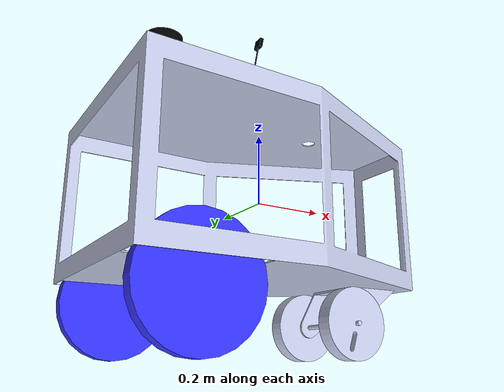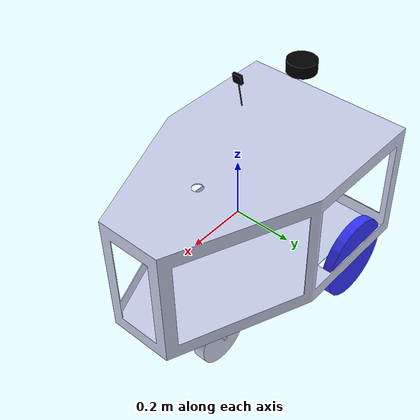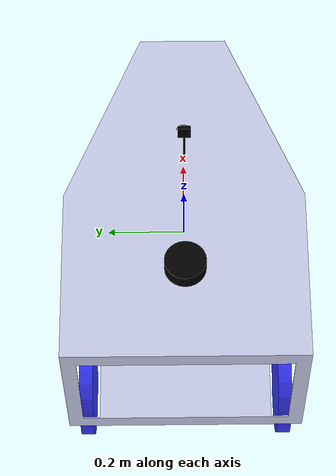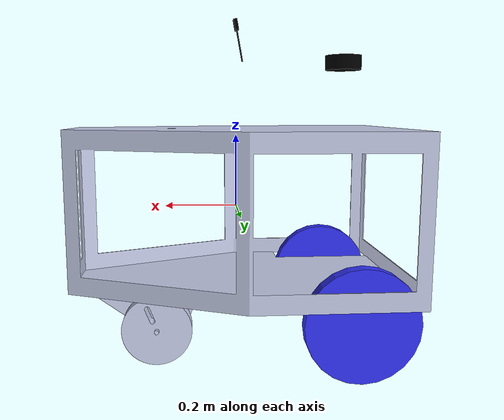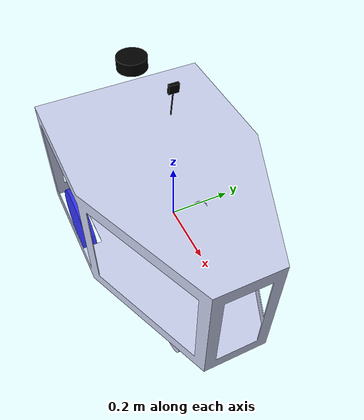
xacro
<?xml version="1.0"?>
<robot xmlns:xacro="http://www.ros.org/wiki/xacro"  name="robot">

    <xacro:arg name="use_ros2_control" default="true"/>
    <xacro:arg name="sim_mode" default="false"/>

    <xacro:include filename="dokalman_core.xacro" />

    <xacro:if value="$(arg use_ros2_control)">
        <xacro:include filename="ros2_control.xacro" />
    </xacro:if>
    <xacro:unless value="$(arg use_ros2_control)">
        <xacro:include filename="gazebo_control.xacro" />
    </xacro:unless>
    <xacro:include filename="lidar.xacro" />
    <xacro:include filename="camera.xacro" />

</robot>

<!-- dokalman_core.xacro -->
<robot xmlns:xacro="http://www.ros.org/wiki/xacro">

  <xacro:include filename="inertial_macros.xacro"/>

  <!-- PROPERTIES -->
  <xacro:property name="wheel_radius" value="0.15"/>
  <xacro:property name="wheel_thickness" value="0.035"/>
  <xacro:property name="wheel_mass" value="0.15"/>
  <xacro:property name="wheel_offset_x" value="-0.30175"/>
  <xacro:property name="wheel_offset_y" value="0.26"/>
  <xacro:property name="wheel_offset_z" value="-0.26683"/>

  <!-- MATERIALS -->
  <material name="white">
      <color rgba="1 1 1 1" />
  </material>

  <material name="orange">
      <color rgba="1 0.3 0.1 1"/>
  </material>

  <material name="blue">
      <color rgba="0.2 0.2 1 1"/>
  </material>

  <material name="black">
      <color rgba="0 0 0 1"/>
  </material>

  <material name="red">
      <color rgba="1 0 0 1"/>
  </material>

  <!-- BASE LINK -->
  <link name="base_link"/>

  <!-- BASE_FOOTPRINT LINK -->
  <joint name="base_footprint_joint" type="fixed">
      <parent link="base_link"/>
      <child link="base_footprint"/>
      <origin xyz="0 0 -0.40" rpy="0 0 0"/>
  </joint>

  <link name="base_footprint"/>

  <!-- CHASSIS -->
  <joint name="dokalman_chassis_joint" type="fixed">
    <parent link="base_link"/>
    <child link="ChassisLink"/>
    <origin xyz="0 0 0" rpy="0 0 0"/>
  </joint>
  <link name="ChassisLink">
    <xacro:inertial_box mass="1.5" x="1.2192" y="0.6858" z="0.8128">
        <origin xyz="0 0 0.042916" rpy="0 0 -1.5708"/>
    </xacro:inertial_box>
    <visual>
      <origin
        xyz="0 0 0"
        rpy="0 0 -1.5708" />

      <geometry>
        <mesh
          filename="file://$(find articubot_one)/meshes/base_link.STL" />
      </geometry>
      <material
        name="">
        <color
          rgba="0.79216 0.81961 0.93333 1" />
      </material>
    </visual>
    <collision>
      <origin
        xyz="0 0 0"
        rpy="0 0 -1.5708" />
      <geometry>
        <mesh
          filename="file://$(find articubot_one)/meshes/base_link.STL" />
      </geometry>
    </collision>
  </link>

  <!-- BACK LEFT WHEEL -->
  <joint name="left_wheel_joint" type="continuous">
      <parent link="base_link"/>
      <child link="left_wheel"/>
      <origin xyz="${wheel_offset_x} ${wheel_offset_y} ${wheel_offset_z}" rpy="-${pi/2} 0 0" />
      <axis xyz="0 0 1"/>
  </joint>

  <link name="left_wheel">
      <visual>
          <geometry>
              <cylinder radius="${wheel_radius}" length="${wheel_thickness}"/>
          </geometry>
          <material name="blue"/>
      </visual>
      <collision>
          <geometry>
              <sphere radius="${wheel_radius}"/>
          </geometry>
      </collision>
      <xacro:inertial_cylinder mass="${wheel_mass}" length="${wheel_thickness}" radius="${wheel_radius}">
          <origin xyz="0 0 0" rpy="0 0 0"/>
      </xacro:inertial_cylinder>
  </link>

  <gazebo reference="left_wheel">
      <material>Gazebo/White</material>
  </gazebo>

  <!-- BACK RIGHT WHEEL -->
  <joint name="right_wheel_joint" type="continuous">
        <parent link="base_link"/>
        <child link="right_wheel"/>
        <origin xyz="${wheel_offset_x}   ${-wheel_offset_y} ${wheel_offset_z}" rpy="${pi/2} 0 0" />
        <axis xyz="0 0 -1"/>
    </joint>

    <link name="right_wheel">
        <visual>
            <geometry>
                <cylinder radius="${wheel_radius}" length="${wheel_thickness}"/>
            </geometry>
            <material name="blue"/>
        </visual>
        <collision>
            <geometry>
                <sphere radius="${wheel_radius}"/>
            </geometry>
        </collision>
        <xacro:inertial_cylinder mass="${wheel_mass}" length="${wheel_thickness}" radius="${wheel_radius}">
            <origin xyz="0 0 0" rpy="0 0 0"/>
        </xacro:inertial_cylinder>
    </link>

    <gazebo reference="right_wheel">
        <material>Gazebo/White</material>
    </gazebo>

  <!-- CASTER -->
  <link name="CasterLink">
    <inertial>
      <origin
        xyz="0 -0.036462 0.035808"
        rpy="0 0 0" />
      <mass
        value="0.25" />
      <inertia
        ixx="0.0013774"
        ixy="0"
        ixz="0"
        iyy="0.0026235"
        iyz="0.0003954"
        izz="0.0020896" />
    </inertial>
    <visual>
      <origin
        xyz="0 0 0"
        rpy="0 0 0" />
      <geometry>
        <mesh
          filename="file://$(find articubot_one)/meshes/CasterLink.STL" />
      </geometry>
      <material
        name="">
        <color
          rgba="0.79216 0.81961 0.93333 1" />
      </material>
    </visual>
    <collision>
      <origin
        xyz="0 0 0"
        rpy="0 0 0" />
      <geometry>
        <mesh
          filename="file://$(find articubot_one)/meshes/CasterLink.STL" />
      </geometry>
    </collision>
  </link>
  <joint name="CasterJoint" type="continuous">
    <origin
      xyz="0.3302 0 -0.21908"
      rpy="1.5708 0 -1.5708" />
    <parent
      link="base_link" />
    <child
      link="CasterLink" />
    <axis
      xyz="0 1 0" />
    <limit
      lower="0"
      upper="3.1415"
      effort="1"
      velocity="1" />
  </joint>

  <!-- FRONT LEFT WHEEL -->
  <link name="FrontLeftWheelLink">
    <inertial>
      <origin
        xyz="-0.024699 0 0"
        rpy="0 0 0" />
      <mass
        value="0.1" />
      <inertia
        ixx="0.0053422"
        ixy="0"
        ixz="0"
        iyy="0.0028032"
        iyz="0"
        izz="0.0028787" />
    </inertial>
    <visual>
      <origin
        xyz="0 0 0"
        rpy="0 0 0" />
      <geometry>
        <mesh
          filename="file://$(find articubot_one)/meshes/FrontLeftWheelLink.STL" />
      </geometry>
      <material
        name="">
        <color
          rgba="0.79216 0.81961 0.93333 1" />
      </material>
    </visual>
    <collision>
      <origin
        xyz="0 0 0"
        rpy="0 0 0" />
      <geometry>
        <mesh
          filename="file://$(find articubot_one)/meshes/FrontLeftWheelLink.STL" />
      </geometry>
    </collision>
  </link>
  <joint name="FrontLeftWheelJoint" type="continuous">
    <origin
      xyz="-0.083806 -0.10265 0.10795"
      rpy="1.1883 0 0" />
    <parent
      link="CasterLink" />
    <child
      link="FrontLeftWheelLink" />
    <axis
      xyz="1 0 0" />
    <limit
      lower="0"
      upper="3.1415"
      effort="1"
      velocity="1" />
  </joint>

  <!-- FRONT RIGHT WHEEL -->
  <link name="FrontRightWheelLink">
    <inertial>
      <origin
        xyz="0.024604 0 0"
        rpy="0 0 0" />
      <mass
        value="0.1" />
      <inertia
        ixx="0.0053422"
        ixy="0"
        ixz="0"
        iyy="0.0028032"
        iyz="0"
        izz="0.0028787" />
    </inertial>
    <visual>
      <origin
        xyz="0 0 0"
        rpy="0 0 0" />
      <geometry>
        <mesh
          filename="file://$(find articubot_one)/meshes/FrontRightWheelLink.STL" />
      </geometry>
      <material
        name="">
        <color
          rgba="0.79216 0.81961 0.93333 1" />
      </material>
    </visual>
    <collision>
      <origin
        xyz="0 0 0"
        rpy="0 0 0" />
      <geometry>
        <mesh
          filename="file://$(find articubot_one)/meshes/FrontRightWheelLink.STL" />
      </geometry>
    </collision>
  </link>
  <joint name="FrontRightWheelJoint" type="continuous">
    <origin
      xyz="0.083901 -0.10265 0.10795"
      rpy="-1.8971 0 0" />
    <parent
      link="CasterLink" />
    <child
      link="FrontRightWheelLink" />
    <axis
      xyz="1 0 0" />
    <limit
      lower="0"
      upper="3.1415"
      effort="1"
      velocity="1" />
  </joint>
</robot>

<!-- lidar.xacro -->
<robot xmlns:xacro="http://www.ros.org/wiki/xacro" >

    <joint name="laser_joint" type="fixed">
        <parent link="base_link"/>
        <child link="laser_frame"/>
        <origin xyz="-0.30175 0 0.4" rpy="0 0 0"/>
    </joint>

    <link name="laser_frame">
        <visual>
            <geometry>
                <cylinder radius="0.05" length="0.04"/>
            </geometry>
            <material name="black"/>
        </visual>
        <collision>
            <geometry>
                <cylinder radius="0.05" length="0.04"/>
            </geometry>
        </collision>
        <xacro:inertial_cylinder mass="0.1" length="0.04" radius="0.05">
            <origin xyz="0 0 0" rpy="0 0 0"/>
        </xacro:inertial_cylinder>
    </link>

    <gazebo reference="laser_frame">
        <material>Gazebo/Black</material>

        <sensor name="laser" type="ray">
            <pose> 0 0 0 0 0 0 </pose>
            <visualize>false</visualize>
            <update_rate>5</update_rate>
            <ray>
                <scan>
                    <horizontal>
                        <samples>360</samples>
                        <min_angle>-3.14</min_angle>
                        <max_angle>3.14</max_angle>
                    </horizontal>
                </scan>
                <range>
                    <min>0.3</min>
                    <max>20</max>
                </range>
            </ray>
            <plugin name="laser_controller" filename="libgazebo_ros_ray_sensor.so">
                <ros>
                    <argument>~/out:=scan</argument>
                </ros>
                <output_type>sensor_msgs/LaserScan</output_type>
                <frame_name>laser_frame</frame_name>
            </plugin>
        </sensor>
    </gazebo>

</robot>

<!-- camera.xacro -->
<robot xmlns:xacro="http://www.ros.org/wiki/xacro" >

    <joint name="camera_joint" type="fixed">
        <parent link="base_link"/>
        <child link="camera_link"/>
        <origin xyz="0 0 0.5" rpy="0 0.18 0"/>
    </joint>

    <link name="camera_link">
        <visual>
            <geometry>
                <box size="0.010 0.03 0.03"/>
            </geometry>
            <material name="black"/>
        </visual>
        <visual>
            <origin xyz="0 0 -0.05"/>
            <geometry>
                <cylinder radius="0.002" length="0.1"/>
            </geometry>
            <material name="black"/>
        </visual>
    </link>

    <joint name="camera_optical_joint" type="fixed">
        <parent link="camera_link"/>
        <child link="camera_link_optical"/>
        <origin xyz="0 0 0" rpy="${-pi/2} 0 ${-pi/2}"/>
    </joint>

    <link name="camera_link_optical"></link>

    <gazebo reference="camera_link">
        <material>Gazebo/Black</material>

        <sensor name="camera" type="camera">
            <pose> 0 0 0 0 0 0 </pose>
            <visualize>true</visualize>
            <update_rate>10</update_rate>
            <camera>
                <horizontal_fov>1.089</horizontal_fov>
                <image>
                    <format>R8G8B8</format>
                    <width>640</width>
                    <height>480</height>
                </image>
                <clip>
                    <near>0.05</near>
                    <far>8.0</far>
                </clip>
            </camera>
            <plugin name="camera_controller" filename="libgazebo_ros_camera.so">
                <frame_name>camera_link_optical</frame_name>
            </plugin>
        </sensor>
    </gazebo>

</robot>
